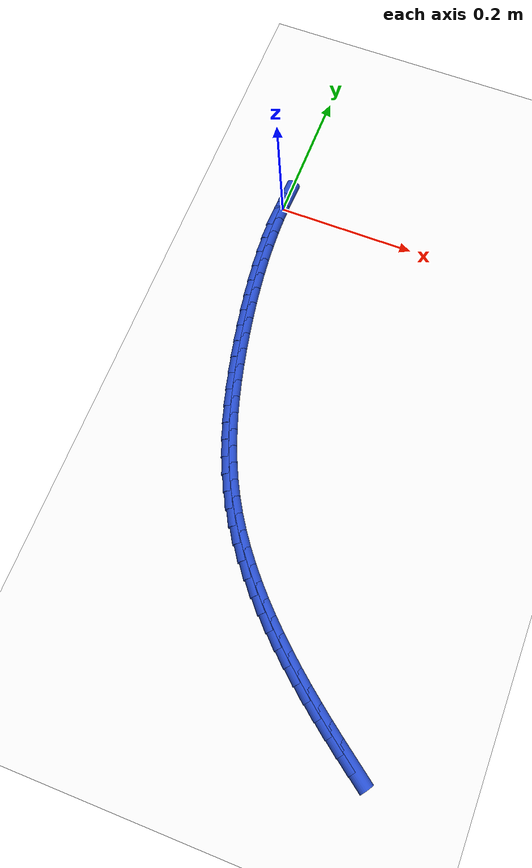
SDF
<sdf version="1.6">
 <world name="default">
  <model name="ground_plane">
   <static>1</static>
   <link name="link">
    <collision name="collision">
     <geometry><plane><normal>0 0 1</normal><size>100 100</size></plane></geometry>
     <surface><friction><ode><mu>100</mu><mu2>50</mu2></ode></friction></surface>
    </collision>
    <visual name="visual">
     <cast_shadows>0</cast_shadows>
     <geometry><plane><normal>0 0 1</normal><size>100 100</size></plane></geometry>
     <material>
      <script><uri>file://media/materials/scripts/gazebo.material</uri><name>Gazebo/WhiteGlow</name></script>
     </material>
    </visual>
   </link>
  </model>
  <model name="line">
   <link name="link_0">
    <pose>-9.540979117872439e-18 2.0816681711721685e-17 0.01 0 1.57 1.5407770515693082</pose>
    <collision name="collision">
     <geometry><cylinder><radius>0.01</radius><length>0.08</length></cylinder></geometry>
    </collision>
    <visual name="visual">
     <material>
      <script><name>Gazebo/Blue</name><uri>file://media/materials/scripts/gazebo.material</uri></script>
     </material>
     <geometry><cylinder><radius>0.01</radius><length>0.08</length></cylinder></geometry>
    </visual>
   </link>
   <link name="link_246">
    <pose>0.35415855705769145 -0.6866243737456615 0.01 0 1.57 -0.6177410677641799</pose>
    <collision name="collision">
     <geometry><cylinder><radius>0.01</radius><length>0.08</length></cylinder></geometry>
    </collision>
    <visual name="visual">
     <material>
      <script><name>Gazebo/Blue</name><uri>file://media/materials/scripts/gazebo.material</uri></script>
     </material>
     <geometry><cylinder><radius>0.01</radius><length>0.08</length></cylinder></geometry>
    </visual>
   </link>
   <link name="link_247">
    <pose>0.33442729025134815 -0.6726052246588847 0.01 0 1.57 -0.6295512551904319</pose>
    <collision name="collision">
     <geometry><cylinder><radius>0.01</radius><length>0.08</length></cylinder></geometry>
    </collision>
    <visual name="visual">
     <material>
      <script><name>Gazebo/Blue</name><uri>file://media/materials/scripts/gazebo.material</uri></script>
     </material>
     <geometry><cylinder><radius>0.01</radius><length>0.08</length></cylinder></geometry>
    </visual>
   </link>
   <link name="link_248">
    <pose>0.3148216452894671 -0.6583239307190976 0.01 0 1.57 -0.6446332392148448</pose>
    <collision name="collision">
     <geometry><cylinder><radius>0.01</radius><length>0.08</length></cylinder></geometry>
    </collision>
    <visual name="visual">
     <material>
      <script><name>Gazebo/Blue</name><uri>file://media/materials/scripts/gazebo.material</uri></script>
     </material>
     <geometry><cylinder><radius>0.01</radius><length>0.08</length></cylinder></geometry>
    </visual>
   </link>
   <link name="link_249">
    <pose>0.29541682558963894 -0.6437359605292108 0.01 0 1.57 -0.6619725708703276</pose>
    <collision name="collision">
     <geometry><cylinder><radius>0.01</radius><length>0.08</length></cylinder></geometry>
    </collision>
    <visual name="visual">
     <material>
      <script><name>Gazebo/Blue</name><uri>file://media/materials/scripts/gazebo.material</uri></script>
     </material>
     <geometry><cylinder><radius>0.01</radius><length>0.08</length></cylinder></geometry>
    </visual>
   </link>
   <link name="link_250">
    <pose>0.2762740933511718 -0.6288185941956398 0.01 0 1.57 -0.6816355172349695</pose>
    <collision name="collision">
     <geometry><cylinder><radius>0.01</radius><length>0.08</length></cylinder></geometry>
    </collision>
    <visual name="visual">
     <material>
      <script><name>Gazebo/Blue</name><uri>file://media/materials/scripts/gazebo.material</uri></script>
     </material>
     <geometry><cylinder><radius>0.01</radius><length>0.08</length></cylinder></geometry>
    </visual>
   </link>
   <link name="link_251">
    <pose>0.2574547107733746 -0.6135491118248008 0.01 0 1.57 -0.7036987644757671</pose>
    <collision name="collision">
     <geometry><cylinder><radius>0.01</radius><length>0.08</length></cylinder></geometry>
    </collision>
    <visual name="visual">
     <material>
      <script><name>Gazebo/Blue</name><uri>file://media/materials/scripts/gazebo.material</uri></script>
     </material>
     <geometry><cylinder><radius>0.01</radius><length>0.08</length></cylinder></geometry>
    </visual>
   </link>
   <link name="link_252">
    <pose>0.23901994005555516 -0.5979047935231093 0.01 0 1.57 -0.7282468796458528</pose>
    <collision name="collision">
     <geometry><cylinder><radius>0.01</radius><length>0.08</length></cylinder></geometry>
    </collision>
    <visual name="visual">
     <material>
      <script><name>Gazebo/Blue</name><uri>file://media/materials/scripts/gazebo.material</uri></script>
     </material>
     <geometry><cylinder><radius>0.01</radius><length>0.08</length></cylinder></geometry>
    </visual>
   </link>
   <link name="link_253">
    <pose>0.2210310433970232 -0.5818629193969824 0.01 0 1.57 -0.7553690932704088</pose>
    <collision name="collision">
     <geometry><cylinder><radius>0.01</radius><length>0.08</length></cylinder></geometry>
    </collision>
    <visual name="visual">
     <material>
      <script><name>Gazebo/Blue</name><uri>file://media/materials/scripts/gazebo.material</uri></script>
     </material>
     <geometry><cylinder><radius>0.01</radius><length>0.08</length></cylinder></geometry>
    </visual>
   </link>
   <link name="link_254">
    <pose>0.2035492829970868 -0.5654007695528355 0.01 0 1.57 -0.7851552051254292</pose>
    <collision name="collision">
     <geometry><cylinder><radius>0.01</radius><length>0.08</length></cylinder></geometry>
    </collision>
    <visual name="visual">
     <material>
      <script><name>Gazebo/Blue</name><uri>file://media/materials/scripts/gazebo.material</uri></script>
     </material>
     <geometry><cylinder><radius>0.01</radius><length>0.08</length></cylinder></geometry>
    </visual>
   </link>
   <link name="link_255">
    <pose>0.18663592105505444 -0.5484956240970844 0.01 0 1.57 -0.8176904199091142</pose>
    <collision name="collision">
     <geometry><cylinder><radius>0.01</radius><length>0.08</length></cylinder></geometry>
    </collision>
    <visual name="visual">
     <material>
      <script><name>Gazebo/Blue</name><uri>file://media/materials/scripts/gazebo.material</uri></script>
     </material>
     <geometry><cylinder><radius>0.01</radius><length>0.08</length></cylinder></geometry>
    </visual>
   </link>
   <link name="link_256">
    <pose>0.17035221977023465 -0.5311247631361451 0.01 0 1.57 -0.8530489509709973</pose>
    <collision name="collision">
     <geometry><cylinder><radius>0.01</radius><length>0.08</length></cylinder></geometry>
    </collision>
    <visual name="visual">
     <material>
      <script><name>Gazebo/Blue</name><uri>file://media/materials/scripts/gazebo.material</uri></script>
     </material>
     <geometry><cylinder><radius>0.01</radius><length>0.08</length></cylinder></geometry>
    </visual>
   </link>
   <link name="link_257">
    <pose>0.15475944134193614 -0.5132654667764339 0.01 0 1.57 -0.8912863038393347</pose>
    <collision name="collision">
     <geometry><cylinder><radius>0.01</radius><length>0.08</length></cylinder></geometry>
    </collision>
    <visual name="visual">
     <material>
      <script><name>Gazebo/Blue</name><uri>file://media/materials/scripts/gazebo.material</uri></script>
     </material>
     <geometry><cylinder><radius>0.01</radius><length>0.08</length></cylinder></geometry>
    </visual>
   </link>
   <link name="link_258">
    <pose>0.13991884796946735 -0.4948950151243664 0.01 0 1.57 -0.9324302831941749</pose>
    <collision name="collision">
     <geometry><cylinder><radius>0.01</radius><length>0.08</length></cylinder></geometry>
    </collision>
    <visual name="visual">
     <material>
      <script><name>Gazebo/Blue</name><uri>file://media/materials/scripts/gazebo.material</uri></script>
     </material>
     <geometry><cylinder><radius>0.01</radius><length>0.08</length></cylinder></geometry>
    </visual>
   </link>
   <link name="link_259">
    <pose>0.12589170185213688 -0.4759906882863588 0.01 0 1.57 -0.976470970317677</pose>
    <collision name="collision">
     <geometry><cylinder><radius>0.01</radius><length>0.08</length></cylinder></geometry>
    </collision>
    <visual name="visual">
     <material>
      <script><name>Gazebo/Blue</name><uri>file://media/materials/scripts/gazebo.material</uri></script>
     </material>
     <geometry><cylinder><radius>0.01</radius><length>0.08</length></cylinder></geometry>
    </visual>
   </link>
   <link name="link_260">
    <pose>0.11273926518925334 -0.45652976636882703 0.01 0 1.57 -1.0233501953531894</pose>
    <collision name="collision">
     <geometry><cylinder><radius>0.01</radius><length>0.08</length></cylinder></geometry>
    </collision>
    <visual name="visual">
     <material>
      <script><name>Gazebo/Blue</name><uri>file://media/materials/scripts/gazebo.material</uri></script>
     </material>
     <geometry><cylinder><radius>0.01</radius><length>0.08</length></cylinder></geometry>
    </visual>
   </link>
   <link name="link_261">
    <pose>0.10052280018012487 -0.43648952947818637 0.01 0 1.57 -1.0722423851354603</pose>
    <collision name="collision">
     <geometry><cylinder><radius>0.01</radius><length>0.08</length></cylinder></geometry>
    </collision>
    <visual name="visual">
     <material>
      <script><name>Gazebo/Blue</name><uri>file://media/materials/scripts/gazebo.material</uri></script>
     </material>
     <geometry><cylinder><radius>0.01</radius><length>0.08</length></cylinder></geometry>
    </visual>
   </link>
   <link name="link_262">
    <pose>0.0892894968310724 -0.41585624542348715 0.01 0 1.57 -1.1188341591273065</pose>
    <collision name="collision">
     <geometry><cylinder><radius>0.01</radius><length>0.08</length></cylinder></geometry>
    </collision>
    <visual name="visual">
     <material>
      <script><name>Gazebo/Blue</name><uri>file://media/materials/scripts/gazebo.material</uri></script>
     </material>
     <geometry><cylinder><radius>0.01</radius><length>0.08</length></cylinder></geometry>
    </visual>
   </link>
   <link name="link_263">
    <pose>0.07900363426000383 -0.39466913597843034 0.01 0 1.57 -1.1615505685913845</pose>
    <collision name="collision">
     <geometry><cylinder><radius>0.01</radius><length>0.08</length></cylinder></geometry>
    </collision>
    <visual name="visual">
     <material>
      <script><name>Gazebo/Blue</name><uri>file://media/materials/scripts/gazebo.material</uri></script>
     </material>
     <geometry><cylinder><radius>0.01</radius><length>0.08</length></cylinder></geometry>
    </visual>
   </link>
   <link name="link_264">
    <pose>0.06959922972570619 -0.37298675072092885 0.01 0 1.57 -1.2004114183681862</pose>
    <collision name="collision">
     <geometry><cylinder><radius>0.01</radius><length>0.08</length></cylinder></geometry>
    </collision>
    <visual name="visual">
     <material>
      <script><name>Gazebo/Blue</name><uri>file://media/materials/scripts/gazebo.material</uri></script>
     </material>
     <geometry><cylinder><radius>0.01</radius><length>0.08</length></cylinder></geometry>
    </visual>
   </link>
   <link name="link_265">
    <pose>0.061010256115815266 -0.3508676675680973 0.01 0 1.57 -1.2354863980577342</pose>
    <collision name="collision">
     <geometry><cylinder><radius>0.01</radius><length>0.08</length></cylinder></geometry>
    </collision>
    <visual name="visual">
     <material>
      <script><name>Gazebo/Blue</name><uri>file://media/materials/scripts/gazebo.material</uri></script>
     </material>
     <geometry><cylinder><radius>0.01</radius><length>0.08</length></cylinder></geometry>
    </visual>
   </link>
   <link name="link_266">
    <pose>0.05317068631796684 -0.32837046443705 0.01 0 1.57 -1.2668752488328052</pose>
    <collision name="collision">
     <geometry><cylinder><radius>0.01</radius><length>0.08</length></cylinder></geometry>
    </collision>
    <visual name="visual">
     <material>
      <script><name>Gazebo/Blue</name><uri>file://media/materials/scripts/gazebo.material</uri></script>
     </material>
     <geometry><cylinder><radius>0.01</radius><length>0.08</length></cylinder></geometry>
    </visual>
   </link>
   <link name="link_267">
    <pose>0.04601449321979669 -0.3055537192449016 0.01 0 1.57 -1.2946929216588285</pose>
    <collision name="collision">
     <geometry><cylinder><radius>0.01</radius><length>0.08</length></cylinder></geometry>
    </collision>
    <visual name="visual">
     <material>
      <script><name>Gazebo/Blue</name><uri>file://media/materials/scripts/gazebo.material</uri></script>
     </material>
     <geometry><cylinder><radius>0.01</radius><length>0.08</length></cylinder></geometry>
    </visual>
   </link>
   <link name="link_268">
    <pose>0.039475649708940616 -0.2824760099087666 0.01 0 1.57 -1.3190575733779157</pose>
    <collision name="collision">
     <geometry><cylinder><radius>0.01</radius><length>0.08</length></cylinder></geometry>
    </collision>
    <visual name="visual">
     <material>
      <script><name>Gazebo/Blue</name><uri>file://media/materials/scripts/gazebo.material</uri></script>
     </material>
     <geometry><cylinder><radius>0.01</radius><length>0.08</length></cylinder></geometry>
    </visual>
   </link>
   <link name="link_269">
    <pose>0.033488128673034405 -0.25919591434575945 0.01 0 1.57 -1.3400811315273449</pose>
    <collision name="collision">
     <geometry><cylinder><radius>0.01</radius><length>0.08</length></cylinder></geometry>
    </collision>
    <visual name="visual">
     <material>
      <script><name>Gazebo/Blue</name><uri>file://media/materials/scripts/gazebo.material</uri></script>
     </material>
     <geometry><cylinder><radius>0.01</radius><length>0.08</length></cylinder></geometry>
    </visual>
   </link>
   <link name="link_270">
    <pose>0.027985902999713666 -0.23577201047299387 0.01 0 1.57 -1.3579272678272594</pose>
    <collision name="collision">
     <geometry><cylinder><radius>0.01</radius><length>0.08</length></cylinder></geometry>
    </collision>
    <visual name="visual">
     <material>
      <script><name>Gazebo/Blue</name><uri>file://media/materials/scripts/gazebo.material</uri></script>
     </material>
     <geometry><cylinder><radius>0.01</radius><length>0.08</length></cylinder></geometry>
    </visual>
   </link>
   <link name="link_271">
    <pose>0.02290441315632988 -0.21226223369126945 0.01 0 1.57 -1.3747420623539048</pose>
    <collision name="collision">
     <geometry><cylinder><radius>0.01</radius><length>0.08</length></cylinder></geometry>
    </collision>
    <visual name="visual">
     <material>
      <script><name>Gazebo/Blue</name><uri>file://media/materials/scripts/gazebo.material</uri></script>
     </material>
     <geometry><cylinder><radius>0.01</radius><length>0.08</length></cylinder></geometry>
    </visual>
   </link>
   <link name="link_272">
    <pose>0.018225647965068814 -0.18870414021708853 0.01 0 1.57 -1.3930189537912465</pose>
    <collision name="collision">
     <geometry><cylinder><radius>0.01</radius><length>0.08</length></cylinder></geometry>
    </collision>
    <visual name="visual">
     <material>
      <script><name>Gazebo/Blue</name><uri>file://media/materials/scripts/gazebo.material</uri></script>
     </material>
     <geometry><cylinder><radius>0.01</radius><length>0.08</length></cylinder></geometry>
    </visual>
   </link>
   <link name="link_273">
    <pose>0.013986605160660791 -0.16511120299332205 0.01 0 1.57 -1.4129406408793002</pose>
    <collision name="collision">
     <geometry><cylinder><radius>0.01</radius><length>0.08</length></cylinder></geometry>
    </collision>
    <visual name="visual">
     <material>
      <script><name>Gazebo/Blue</name><uri>file://media/materials/scripts/gazebo.material</uri></script>
     </material>
     <geometry><cylinder><radius>0.01</radius><length>0.08</length></cylinder></geometry>
    </visual>
   </link>
   <link name="link_274">
    <pose>0.010227456976895229 -0.1414955051457014 0.01 0 1.57 -1.4345496988553452</pose>
    <collision name="collision">
     <geometry><cylinder><radius>0.01</radius><length>0.08</length></cylinder></geometry>
    </collision>
    <visual name="visual">
     <material>
      <script><name>Gazebo/Blue</name><uri>file://media/materials/scripts/gazebo.material</uri></script>
     </material>
     <geometry><cylinder><radius>0.01</radius><length>0.08</length></cylinder></geometry>
    </visual>
   </link>
   <link name="link_275">
    <pose>0.00698837564756153 -0.11786912979995809 0.01 0 1.57 -1.4578882853760509</pose>
    <collision name="collision">
     <geometry><cylinder><radius>0.01</radius><length>0.08</length></cylinder></geometry>
    </collision>
    <visual name="visual">
     <material>
      <script><name>Gazebo/Blue</name><uri>file://media/materials/scripts/gazebo.material</uri></script>
     </material>
     <geometry><cylinder><radius>0.01</radius><length>0.08</length></cylinder></geometry>
    </visual>
   </link>
   <link name="link_276">
    <pose>0.004309533406449092 -0.09424416008182346 0.01 0 1.57 -1.4829963529255448</pose>
    <collision name="collision">
     <geometry><cylinder><radius>0.01</radius><length>0.08</length></cylinder></geometry>
    </collision>
    <visual name="visual">
     <material>
      <script><name>Gazebo/Blue</name><uri>file://media/materials/scripts/gazebo.material</uri></script>
     </material>
     <geometry><cylinder><radius>0.01</radius><length>0.08</length></cylinder></geometry>
    </visual>
   </link>
   <link name="link_277">
    <pose>0.0022311024873473144 -0.07063267911702899 0.01 0 1.57 -1.5099095438127779</pose>
    <collision name="collision">
     <geometry><cylinder><radius>0.01</radius><length>0.08</length></cylinder></geometry>
    </collision>
    <visual name="visual">
     <material>
      <script><name>Gazebo/Blue</name><uri>file://media/materials/scripts/gazebo.material</uri></script>
     </material>
     <geometry><cylinder><radius>0.01</radius><length>0.08</length></cylinder></geometry>
    </visual>
   </link>
   <link name="link_278">
    <pose>0.000793255124045602 -0.04704677003130606 0.01 0 1.57 -1.5386567518889511</pose>
    <collision name="collision">
     <geometry><cylinder><radius>0.01</radius><length>0.08</length></cylinder></geometry>
    </collision>
    <visual name="visual">
     <material>
      <script><name>Gazebo/Blue</name><uri>file://media/materials/scripts/gazebo.material</uri></script>
     </material>
     <geometry><cylinder><radius>0.01</radius><length>0.08</length></cylinder></geometry>
    </visual>
   </link>
   <link name="link_279">
    <pose>3.616355033334278e-05 -0.02349851595038539 0.01 0 1.57 -1.569257356339936</pose>
    <collision name="collision">
     <geometry><cylinder><radius>0.01</radius><length>0.08</length></cylinder></geometry>
    </collision>
    <visual name="visual">
     <material>
      <script><name>Gazebo/Blue</name><uri>file://media/materials/scripts/gazebo.material</uri></script>
     </material>
     <geometry><cylinder><radius>0.01</radius><length>0.08</length></cylinder></geometry>
    </visual>
   </link>
  </model>
 </world>
</sdf>
